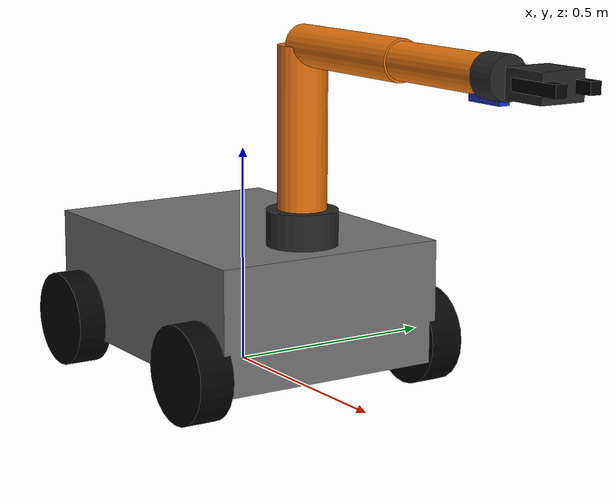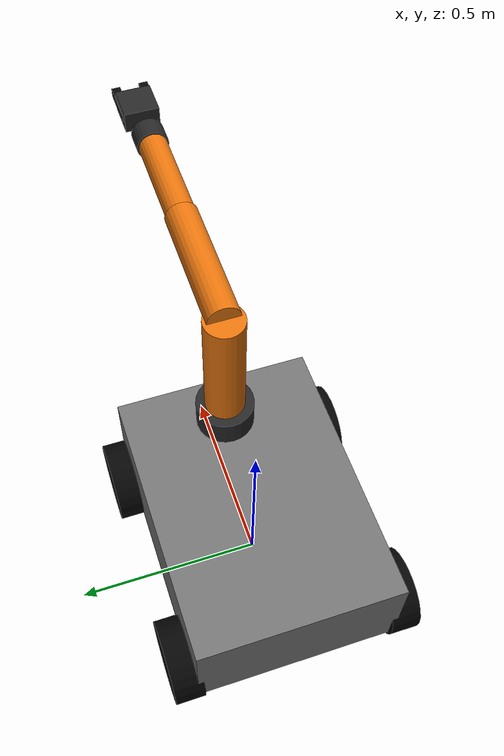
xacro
<?xml version="1.0"?>
<robot name="scout_button_press_lite" xmlns:xacro="http://www.ros.org/wiki/xacro">

  <!-- Materials -->
  <material name="scout_gray">
    <color rgba="0.45 0.45 0.45 1"/>
  </material>

  <material name="dark_gray">
    <color rgba="0.15 0.15 0.15 1"/>
  </material>

  <material name="black">
    <color rgba="0.02 0.02 0.02 1"/>
  </material>

  <material name="orange">
    <color rgba="0.9 0.45 0.05 1"/>
  </material>

  <material name="blue">
    <color rgba="0.1 0.2 0.8 1"/>
  </material>

  <!-- Scout Lite Body -->
  <!-- 실제 Scout 크기 느낌 유지: 약 0.75 x 0.55 x 0.28 m -->
  <link name="base_link">
    <inertial>
      <mass value="45.0"/>
      <origin xyz="0 0 0.18"/>
      <inertia ixx="2.0" ixy="0" ixz="0"
               iyy="2.0" iyz="0"
               izz="2.5"/>
    </inertial>

    <visual>
      <origin xyz="0 0 0.18" rpy="0 0 0"/>
      <geometry>
        <box size="0.75 0.55 0.28"/>
      </geometry>
      <material name="scout_gray"/>
    </visual>

    <collision>
      <origin xyz="0 0 0.18" rpy="0 0 0"/>
      <geometry>
        <box size="0.75 0.55 0.28"/>
      </geometry>
    </collision>
  </link>

  <link name="base_footprint"/>

  <joint name="base_footprint_joint" type="fixed">
    <parent link="base_link"/>
    <child link="base_footprint"/>
    <origin xyz="0 0 0" rpy="0 0 0"/>
  </joint>

  <!-- Scout Wheels -->
  <link name="front_left_wheel_link">
    <inertial>
      <mass value="1.0"/>
      <inertia ixx="0.01" ixy="0" ixz="0"
               iyy="0.01" iyz="0"
               izz="0.01"/>
    </inertial>
    <visual>
      <origin xyz="0 0 0" rpy="1.5708 0 0"/>
      <geometry>
        <cylinder radius="0.11" length="0.08"/>
      </geometry>
      <material name="black"/>
    </visual>
    <collision>
      <origin xyz="0 0 0" rpy="1.5708 0 0"/>
      <geometry>
        <cylinder radius="0.11" length="0.08"/>
      </geometry>
    </collision>
  </link>

  <joint name="front_left_wheel_joint" type="fixed">
    <parent link="base_link"/>
    <child link="front_left_wheel_link"/>
    <origin xyz="0.28 0.30 0.08" rpy="0 0 0"/>
  </joint>

  <link name="front_right_wheel_link">
    <inertial>
      <mass value="1.0"/>
      <inertia ixx="0.01" ixy="0" ixz="0"
               iyy="0.01" iyz="0"
               izz="0.01"/>
    </inertial>
    <visual>
      <origin xyz="0 0 0" rpy="1.5708 0 0"/>
      <geometry>
        <cylinder radius="0.11" length="0.08"/>
      </geometry>
      <material name="black"/>
    </visual>
    <collision>
      <origin xyz="0 0 0" rpy="1.5708 0 0"/>
      <geometry>
        <cylinder radius="0.11" length="0.08"/>
      </geometry>
    </collision>
  </link>

  <joint name="front_right_wheel_joint" type="fixed">
    <parent link="base_link"/>
    <child link="front_right_wheel_link"/>
    <origin xyz="0.28 -0.30 0.08" rpy="0 0 0"/>
  </joint>

  <link name="rear_left_wheel_link">
    <inertial>
      <mass value="1.0"/>
      <inertia ixx="0.01" ixy="0" ixz="0"
               iyy="0.01" iyz="0"
               izz="0.01"/>
    </inertial>
    <visual>
      <origin xyz="0 0 0" rpy="1.5708 0 0"/>
      <geometry>
        <cylinder radius="0.11" length="0.08"/>
      </geometry>
      <material name="black"/>
    </visual>
    <collision>
      <origin xyz="0 0 0" rpy="1.5708 0 0"/>
      <geometry>
        <cylinder radius="0.11" length="0.08"/>
      </geometry>
    </collision>
  </link>

  <joint name="rear_left_wheel_joint" type="fixed">
    <parent link="base_link"/>
    <child link="rear_left_wheel_link"/>
    <origin xyz="-0.28 0.30 0.08" rpy="0 0 0"/>
  </joint>

  <link name="rear_right_wheel_link">
    <inertial>
      <mass value="1.0"/>
      <inertia ixx="0.01" ixy="0" ixz="0"
               iyy="0.01" iyz="0"
               izz="0.01"/>
    </inertial>
    <visual>
      <origin xyz="0 0 0" rpy="1.5708 0 0"/>
      <geometry>
        <cylinder radius="0.11" length="0.08"/>
      </geometry>
      <material name="black"/>
    </visual>
    <collision>
      <origin xyz="0 0 0" rpy="1.5708 0 0"/>
      <geometry>
        <cylinder radius="0.11" length="0.08"/>
      </geometry>
    </collision>
  </link>

  <joint name="rear_right_wheel_joint" type="fixed">
    <parent link="base_link"/>
    <child link="rear_right_wheel_link"/>
    <origin xyz="-0.28 -0.30 0.08" rpy="0 0 0"/>
  </joint>

  <!-- UR3e Lite Arm on Scout -->
  <!-- 기존 네가 맞춘 UR 위치 느낌 반영 -->
  <!-- base_link 기준 x=0.25, z 약 0.10~0.22 영역 -->
  <link name="ur3e_base_link">
    <inertial>
      <mass value="2.0"/>
      <inertia ixx="0.02" ixy="0" ixz="0"
               iyy="0.02" iyz="0"
               izz="0.02"/>
    </inertial>
    <visual>
      <origin xyz="0 0 0.04" rpy="0 0 0"/>
      <geometry>
        <cylinder radius="0.08" length="0.08"/>
      </geometry>
      <material name="dark_gray"/>
    </visual>
    <collision>
      <origin xyz="0 0 0.04" rpy="0 0 0"/>
      <geometry>
        <cylinder radius="0.08" length="0.08"/>
      </geometry>
    </collision>
  </link>

  <joint name="ur3e_base_joint" type="fixed">
    <parent link="base_link"/>
    <child link="ur3e_base_link"/>
    <origin xyz="0.25 0.0 0.32" rpy="0 0 0"/>
  </joint>

  <link name="ur3e_shoulder_link">
    <inertial>
      <mass value="1.5"/>
      <inertia ixx="0.02" ixy="0" ixz="0"
               iyy="0.02" iyz="0"
               izz="0.02"/>
    </inertial>
    <visual>
      <origin xyz="0 0 0.18" rpy="0 0 0"/>
      <geometry>
        <cylinder radius="0.055" length="0.36"/>
      </geometry>
      <material name="orange"/>
    </visual>
    <collision>
      <origin xyz="0 0 0.18" rpy="0 0 0"/>
      <geometry>
        <cylinder radius="0.055" length="0.36"/>
      </geometry>
    </collision>
  </link>

  <joint name="ur3e_shoulder_joint" type="fixed">
    <parent link="ur3e_base_link"/>
    <child link="ur3e_shoulder_link"/>
    <origin xyz="0 0 0.08" rpy="0 0 0"/>
  </joint>

  <link name="ur3e_upper_arm_link">
    <inertial>
      <mass value="1.2"/>
      <inertia ixx="0.015" ixy="0" ixz="0"
               iyy="0.015" iyz="0"
               izz="0.015"/>
    </inertial>
    <visual>
      <origin xyz="0.18 0 0" rpy="0 1.5708 0"/>
      <geometry>
        <cylinder radius="0.045" length="0.36"/>
      </geometry>
      <material name="orange"/>
    </visual>
    <collision>
      <origin xyz="0.18 0 0" rpy="0 1.5708 0"/>
      <geometry>
        <cylinder radius="0.045" length="0.36"/>
      </geometry>
    </collision>
  </link>

  <joint name="ur3e_upper_arm_joint" type="fixed">
    <parent link="ur3e_shoulder_link"/>
    <child link="ur3e_upper_arm_link"/>
    <origin xyz="0 0 0.36" rpy="0 0 0"/>
  </joint>

  <link name="ur3e_forearm_link">
    <inertial>
      <mass value="1.0"/>
      <inertia ixx="0.012" ixy="0" ixz="0"
               iyy="0.012" iyz="0"
               izz="0.012"/>
    </inertial>
    <visual>
      <origin xyz="0.15 0 0" rpy="0 1.5708 0"/>
      <geometry>
        <cylinder radius="0.04" length="0.30"/>
      </geometry>
      <material name="orange"/>
    </visual>
    <collision>
      <origin xyz="0.15 0 0" rpy="0 1.5708 0"/>
      <geometry>
        <cylinder radius="0.04" length="0.30"/>
      </geometry>
    </collision>
  </link>

  <joint name="ur3e_forearm_joint" type="fixed">
    <parent link="ur3e_upper_arm_link"/>
    <child link="ur3e_forearm_link"/>
    <origin xyz="0.36 0 0" rpy="0 0 0"/>
  </joint>

  <link name="ur3e_flange">
    <inertial>
      <mass value="0.5"/>
      <inertia ixx="0.005" ixy="0" ixz="0"
               iyy="0.005" iyz="0"
               izz="0.005"/>
    </inertial>
    <visual>
      <origin xyz="0 0 0" rpy="0 1.5708 0"/>
      <geometry>
        <cylinder radius="0.045" length="0.06"/>
      </geometry>
      <material name="dark_gray"/>
    </visual>
    <collision>
      <origin xyz="0 0 0" rpy="0 1.5708 0"/>
      <geometry>
        <cylinder radius="0.045" length="0.06"/>
      </geometry>
    </collision>
  </link>

  <joint name="ur3e_flange_joint" type="fixed">
    <parent link="ur3e_forearm_link"/>
    <child link="ur3e_flange"/>
    <origin xyz="0.30 0 0" rpy="0 0 0"/>
  </joint>

  <link name="ur3e_tool0"/>

  <joint name="ur3e_tool0_joint" type="fixed">
    <parent link="ur3e_flange"/>
    <child link="ur3e_tool0"/>
    <origin xyz="0.04 0 0" rpy="0 0 0"/>
  </joint>

  <!-- Simple Gripper -->
  <link name="gripper_base_link">
    <inertial>
      <mass value="0.5"/>
      <inertia ixx="0.003" ixy="0" ixz="0"
               iyy="0.003" iyz="0"
               izz="0.003"/>
    </inertial>
    <visual>
      <origin xyz="0.05 0 0" rpy="0 0 0"/>
      <geometry>
        <box size="0.10 0.10 0.06"/>
      </geometry>
      <material name="dark_gray"/>
    </visual>
    <collision>
      <origin xyz="0.05 0 0" rpy="0 0 0"/>
      <geometry>
        <box size="0.10 0.10 0.06"/>
      </geometry>
    </collision>
  </link>

  <joint name="gripper_base_joint" type="fixed">
    <parent link="ur3e_tool0"/>
    <child link="gripper_base_link"/>
    <origin xyz="0.04 0 0" rpy="0 0 0"/>
  </joint>

  <link name="left_finger_link">
    <visual>
      <origin xyz="0.08 0.04 0" rpy="0 0 0"/>
      <geometry>
        <box size="0.12 0.025 0.025"/>
      </geometry>
      <material name="black"/>
    </visual>
    <collision>
      <origin xyz="0.08 0.04 0" rpy="0 0 0"/>
      <geometry>
        <box size="0.12 0.025 0.025"/>
      </geometry>
    </collision>
    <inertial>
      <mass value="0.1"/>
      <inertia ixx="0.0001" ixy="0" ixz="0"
               iyy="0.0001" iyz="0"
               izz="0.0001"/>
    </inertial>
  </link>

  <joint name="left_finger_joint" type="fixed">
    <parent link="gripper_base_link"/>
    <child link="left_finger_link"/>
    <origin xyz="0 0 0" rpy="0 0 0"/>
  </joint>

  <link name="right_finger_link">
    <visual>
      <origin xyz="0.08 -0.04 0" rpy="0 0 0"/>
      <geometry>
        <box size="0.12 0.025 0.025"/>
      </geometry>
      <material name="black"/>
    </visual>
    <collision>
      <origin xyz="0.08 -0.04 0" rpy="0 0 0"/>
      <geometry>
        <box size="0.12 0.025 0.025"/>
      </geometry>
    </collision>
    <inertial>
      <mass value="0.1"/>
      <inertia ixx="0.0001" ixy="0" ixz="0"
               iyy="0.0001" iyz="0"
               izz="0.0001"/>
    </inertial>
  </link>

  <joint name="right_finger_joint" type="fixed">
    <parent link="gripper_base_link"/>
    <child link="right_finger_link"/>
    <origin xyz="0 0 0" rpy="0 0 0"/>
  </joint>

  <!-- RealSense D435i Lite -->
  <!-- 기존 실제 장착 위치 반영 -->
  <link name="realsense_d435i_link">
    <inertial>
      <mass value="0.1"/>
      <inertia ixx="0.0001" ixy="0" ixz="0"
               iyy="0.0001" iyz="0"
               izz="0.0001"/>
    </inertial>
    <visual>
      <origin xyz="0 0 0" rpy="0 0 0"/>
      <geometry>
        <box size="0.09 0.025 0.025"/>
      </geometry>
      <material name="blue"/>
    </visual>
    <collision>
      <origin xyz="0 0 0" rpy="0 0 0"/>
      <geometry>
        <box size="0.09 0.025 0.025"/>
      </geometry>
    </collision>
  </link>

  <joint name="realsense_d435i_joint" type="fixed">
    <parent link="ur3e_flange"/>
    <child link="realsense_d435i_link"/>
    <origin xyz="-0.025 0 -0.04" rpy="0 3.14159 3.14159"/>
  </joint>

  <link name="realsense_d435i_color_optical_frame"/>

  <joint name="realsense_d435i_color_optical_joint" type="fixed">
    <parent link="realsense_d435i_link"/>
    <child link="realsense_d435i_color_optical_frame"/>
    <origin xyz="0 0 0" rpy="-1.5708 0 -1.5708"/>
  </joint>

</robot>
